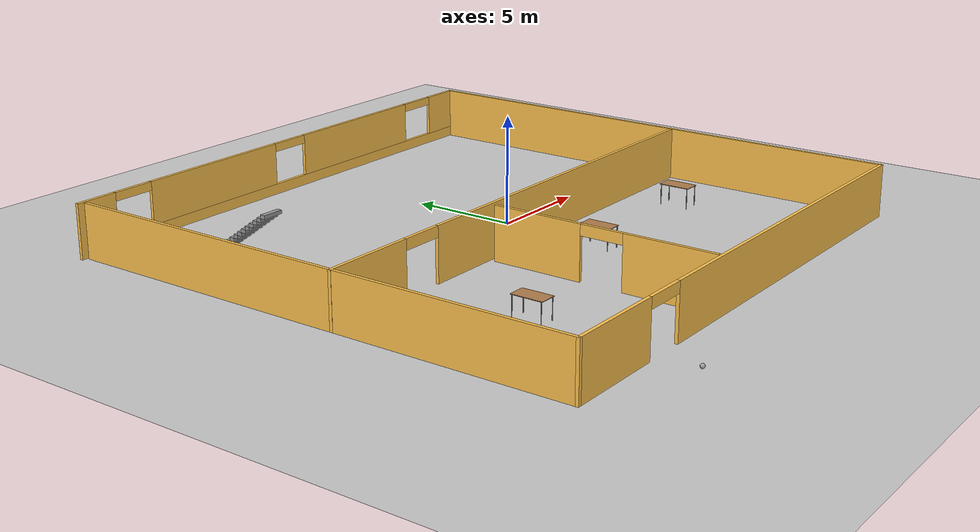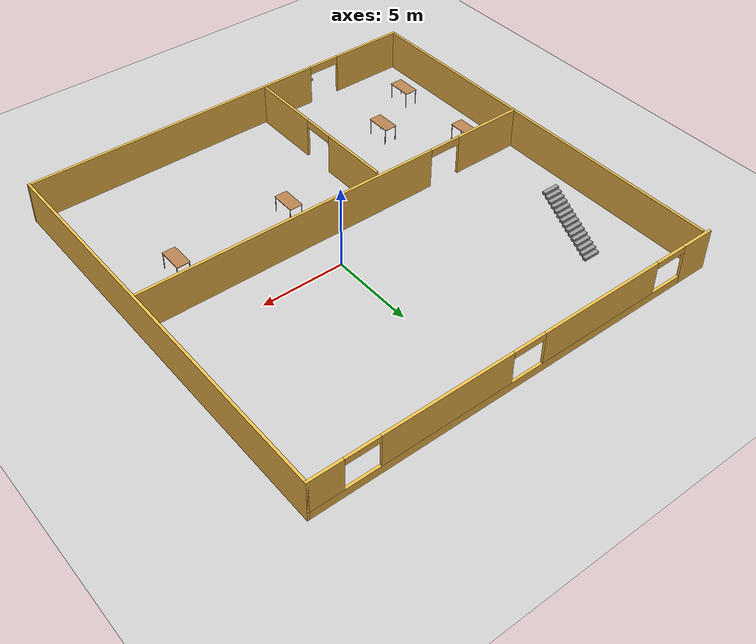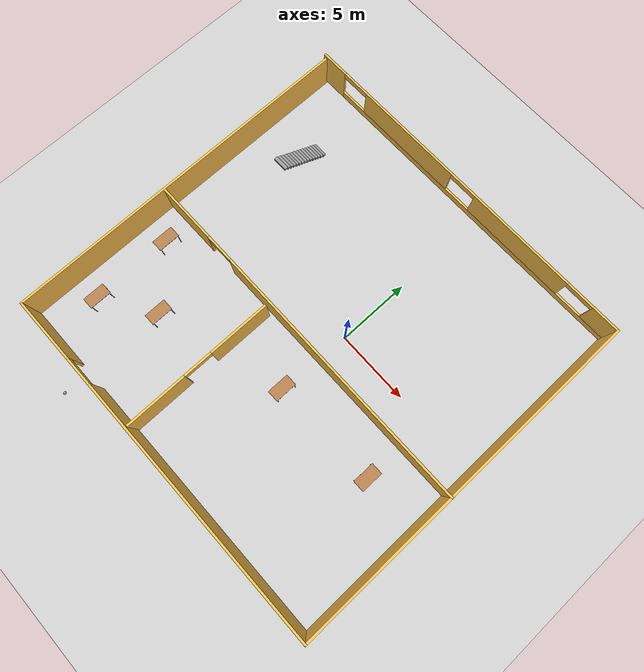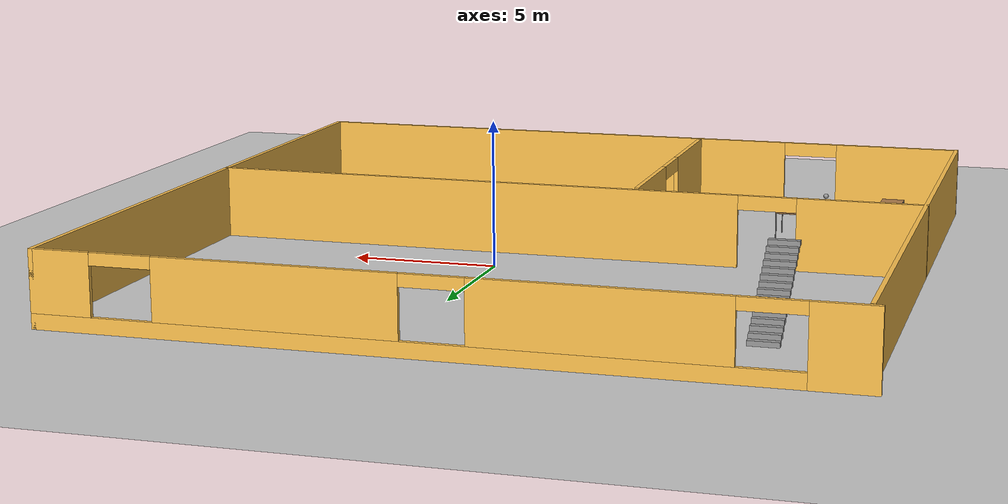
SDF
<sdf version="1.6">
 <world name="default">
  <model name="ground_plane">
   <static>1</static>
   <link name="link">
    <collision name="collision">
     <geometry><plane><normal>0 0 1</normal><size>100 100</size></plane></geometry>
     <surface>
      <contact><collide_bitmask>65535</collide_bitmask></contact>
      <friction><ode><mu>100</mu><mu2>50</mu2></ode></friction>
     </surface>
    </collision>
    <visual name="visual">
     <cast_shadows>0</cast_shadows>
     <geometry><plane><normal>0 0 1</normal><size>100 100</size></plane></geometry>
     <material>
      <script><uri>file://media/materials/scripts/gazebo.material</uri><name>Gazebo/Grey</name></script>
     </material>
    </visual>
   </link>
  </model>
  <model name="building_0">
   <pose>-1.83631 -0.712175 0 0 -0 0</pose>
   <link name="Stairs_0">
    <visual name="Stairs_0_Visual_0">
     <pose>-8.80586 8.30072 0.083333 0 -0 0</pose>
     <geometry><box><size>1 0.233333 0.166667</size></box></geometry>
     <material>
      <script><uri>file://media/materials/scripts/gazebo.material</uri><name>Gazebo/Grey</name></script>
      <ambient>1 1 1 1</ambient>
     </material>
     <meta><layer>0</layer></meta>
    </visual>
    <collision name="Stairs_0_Collision_0">
     <geometry><box><size>1 0.233333 0.166667</size></box></geometry>
     <pose>-8.80586 8.30072 0.083333 0 -0 0</pose>
    </collision>
    <visual name="Stairs_0_Visual_1">
     <pose>-8.80586 8.06739 0.25 0 -0 0</pose>
     <geometry><box><size>1 0.233333 0.166667</size></box></geometry>
     <material>
      <script><uri>file://media/materials/scripts/gazebo.material</uri><name>Gazebo/Grey</name></script>
      <ambient>1 1 1 1</ambient>
     </material>
     <meta><layer>0</layer></meta>
    </visual>
    <collision name="Stairs_0_Collision_1">
     <geometry><box><size>1 0.233333 0.166667</size></box></geometry>
     <pose>-8.80586 8.06739 0.25 0 -0 0</pose>
    </collision>
    <visual name="Stairs_0_Visual_2">
     <pose>-8.80586 7.83406 0.416667 0 -0 0</pose>
     <geometry><box><size>1 0.233333 0.166667</size></box></geometry>
     <material>
      <script><uri>file://media/materials/scripts/gazebo.material</uri><name>Gazebo/Grey</name></script>
      <ambient>1 1 1 1</ambient>
     </material>
     <meta><layer>0</layer></meta>
    </visual>
    <collision name="Stairs_0_Collision_2">
     <geometry><box><size>1 0.233333 0.166667</size></box></geometry>
     <pose>-8.80586 7.83406 0.416667 0 -0 0</pose>
    </collision>
    <visual name="Stairs_0_Visual_3">
     <pose>-8.80586 7.60072 0.583333 0 -0 0</pose>
     <geometry><box><size>1 0.233333 0.166667</size></box></geometry>
     <material>
      <script><uri>file://media/materials/scripts/gazebo.material</uri><name>Gazebo/Grey</name></script>
      <ambient>1 1 1 1</ambient>
     </material>
     <meta><layer>0</layer></meta>
    </visual>
    <collision name="Stairs_0_Collision_3">
     <geometry><box><size>1 0.233333 0.166667</size></box></geometry>
     <pose>-8.80586 7.60072 0.583333 0 -0 0</pose>
    </collision>
    <visual name="Stairs_0_Visual_4">
     <pose>-8.80586 7.36739 0.75 0 -0 0</pose>
     <geometry><box><size>1 0.233333 0.166667</size></box></geometry>
     <material>
      <script><uri>file://media/materials/scripts/gazebo.material</uri><name>Gazebo/Grey</name></script>
      <ambient>1 1 1 1</ambient>
     </material>
     <meta><layer>0</layer></meta>
    </visual>
    <collision name="Stairs_0_Collision_4">
     <geometry><box><size>1 0.233333 0.166667</size></box></geometry>
     <pose>-8.80586 7.36739 0.75 0 -0 0</pose>
    </collision>
    <visual name="Stairs_0_Visual_5">
     <pose>-8.80586 7.13406 0.916667 0 -0 0</pose>
     <geometry><box><size>1 0.233333 0.166667</size></box></geometry>
     <material>
      <script><uri>file://media/materials/scripts/gazebo.material</uri><name>Gazebo/Grey</name></script>
      <ambient>1 1 1 1</ambient>
     </material>
     <meta><layer>0</layer></meta>
    </visual>
    <collision name="Stairs_0_Collision_5">
     <geometry><box><size>1 0.233333 0.166667</size></box></geometry>
     <pose>-8.80586 7.13406 0.916667 0 -0 0</pose>
    </collision>
    <visual name="Stairs_0_Visual_6">
     <pose>-8.80586 6.90072 1.08333 0 -0 0</pose>
     <geometry><box><size>1 0.233333 0.166667</size></box></geometry>
     <material>
      <script><uri>file://media/materials/scripts/gazebo.material</uri><name>Gazebo/Grey</name></script>
      <ambient>1 1 1 1</ambient>
     </material>
     <meta><layer>0</layer></meta>
    </visual>
    <collision name="Stairs_0_Collision_6">
     <geometry><box><size>1 0.233333 0.166667</size></box></geometry>
     <pose>-8.80586 6.90072 1.08333 0 -0 0</pose>
    </collision>
    <visual name="Stairs_0_Visual_7">
     <pose>-8.80586 6.66739 1.25 0 -0 0</pose>
     <geometry><box><size>1 0.233333 0.166667</size></box></geometry>
     <material>
      <script><uri>file://media/materials/scripts/gazebo.material</uri><name>Gazebo/Grey</name></script>
      <ambient>1 1 1 1</ambient>
     </material>
     <meta><layer>0</layer></meta>
    </visual>
    <collision name="Stairs_0_Collision_7">
     <geometry><box><size>1 0.233333 0.166667</size></box></geometry>
     <pose>-8.80586 6.66739 1.25 0 -0 0</pose>
    </collision>
    <visual name="Stairs_0_Visual_8">
     <pose>-8.80586 6.43406 1.41667 0 -0 0</pose>
     <geometry><box><size>1 0.233333 0.166667</size></box></geometry>
     <material>
      <script><uri>file://media/materials/scripts/gazebo.material</uri><name>Gazebo/Grey</name></script>
      <ambient>1 1 1 1</ambient>
     </material>
     <meta><layer>0</layer></meta>
    </visual>
    <collision name="Stairs_0_Collision_8">
     <geometry><box><size>1 0.233333 0.166667</size></box></geometry>
     <pose>-8.80586 6.43406 1.41667 0 -0 0</pose>
    </collision>
    <visual name="Stairs_0_Visual_9">
     <pose>-8.80586 6.20072 1.58333 0 -0 0</pose>
     <geometry><box><size>1 0.233333 0.166667</size></box></geometry>
     <material>
      <script><uri>file://media/materials/scripts/gazebo.material</uri><name>Gazebo/Grey</name></script>
      <ambient>1 1 1 1</ambient>
     </material>
     <meta><layer>0</layer></meta>
    </visual>
    <collision name="Stairs_0_Collision_9">
     <geometry><box><size>1 0.233333 0.166667</size></box></geometry>
     <pose>-8.80586 6.20072 1.58333 0 -0 0</pose>
    </collision>
    <visual name="Stairs_0_Visual_10">
     <pose>-8.80586 5.96739 1.75 0 -0 0</pose>
     <geometry><box><size>1 0.233333 0.166667</size></box></geometry>
     <material>
      <script><uri>file://media/materials/scripts/gazebo.material</uri><name>Gazebo/Grey</name></script>
      <ambient>1 1 1 1</ambient>
     </material>
     <meta><layer>0</layer></meta>
    </visual>
    <collision name="Stairs_0_Collision_10">
     <geometry><box><size>1 0.233333 0.166667</size></box></geometry>
     <pose>-8.80586 5.96739 1.75 0 -0 0</pose>
    </collision>
    <visual name="Stairs_0_Visual_11">
     <pose>-8.80586 5.73406 1.91667 0 -0 0</pose>
     <geometry><box><size>1 0.233333 0.166667</size></box></geometry>
     <material>
      <script><uri>file://media/materials/scripts/gazebo.material</uri><name>Gazebo/Grey</name></script>
      <ambient>1 1 1 1</ambient>
     </material>
     <meta><layer>0</layer></meta>
    </visual>
    <collision name="Stairs_0_Collision_11">
     <geometry><box><size>1 0.233333 0.166667</size></box></geometry>
     <pose>-8.80586 5.73406 1.91667 0 -0 0</pose>
    </collision>
    <visual name="Stairs_0_Visual_12">
     <pose>-8.80586 5.50072 2.08333 0 -0 0</pose>
     <geometry><box><size>1 0.233333 0.166667</size></box></geometry>
     <material>
      <script><uri>file://media/materials/scripts/gazebo.material</uri><name>Gazebo/Grey</name></script>
      <ambient>1 1 1 1</ambient>
     </material>
     <meta><layer>0</layer></meta>
    </visual>
    <collision name="Stairs_0_Collision_12">
     <geometry><box><size>1 0.233333 0.166667</size></box></geometry>
     <pose>-8.80586 5.50072 2.08333 0 -0 0</pose>
    </collision>
    <visual name="Stairs_0_Visual_13">
     <pose>-8.80586 5.26739 2.25 0 -0 0</pose>
     <geometry><box><size>1 0.233333 0.166667</size></box></geometry>
     <material>
      <script><uri>file://media/materials/scripts/gazebo.material</uri><name>Gazebo/Grey</name></script>
      <ambient>1 1 1 1</ambient>
     </material>
     <meta><layer>0</layer></meta>
    </visual>
    <collision name="Stairs_0_Collision_13">
     <geometry><box><size>1 0.233333 0.166667</size></box></geometry>
     <pose>-8.80586 5.26739 2.25 0 -0 0</pose>
    </collision>
    <visual name="Stairs_0_Visual_14">
     <pose>-8.80586 5.03406 2.41667 0 -0 0</pose>
     <geometry><box><size>1 0.233333 0.166667</size></box></geometry>
     <material>
      <script><uri>file://media/materials/scripts/gazebo.material</uri><name>Gazebo/Grey</name></script>
      <ambient>1 1 1 1</ambient>
     </material>
     <meta><layer>0</layer></meta>
    </visual>
    <collision name="Stairs_0_Collision_14">
     <geometry><box><size>1 0.233333 0.166667</size></box></geometry>
     <pose>-8.80586 5.03406 2.41667 0 -0 0</pose>
    </collision>
   </link>
   <link name="Wall_0">
    <pose>-1e-06 12.425 0 0 -0 0</pose>
    <visual name="Wall_0_Visual_0">
     <pose>-11.7466 0 1.25 0 -0 0</pose>
     <geometry><box><size>2.0068 0.15 2.5</size></box></geometry>
     <material>
      <script><uri>file://media/materials/scripts/gazebo.material</uri><name>Gazebo/Grey</name></script>
      <ambient>1 0.764706 0.305882 1</ambient>
     </material>
     <meta><layer>0</layer></meta>
    </visual>
    <collision name="Wall_0_Collision_0">
     <geometry><box><size>2.0068 0.15 2.5</size></box></geometry>
     <pose>-11.7466 0 1.25 0 -0 0</pose>
    </collision>
    <visual name="Wall_0_Visual_1">
     <pose>1.0034 0 0.25 0 -0 0</pose>
     <geometry><box><size>23.4932 0.15 0.5</size></box></geometry>
     <material>
      <script><uri>file://media/materials/scripts/gazebo.material</uri><name>Gazebo/Grey</name></script>
      <ambient>1 0.764706 0.305882 1</ambient>
     </material>
     <meta><layer>0</layer></meta>
    </visual>
    <collision name="Wall_0_Collision_1">
     <geometry><box><size>23.4932 0.15 0.5</size></box></geometry>
     <pose>1.0034 0 0.25 0 -0 0</pose>
    </collision>
    <visual name="Wall_0_Visual_2">
     <pose>-4.86655 0 1.5 0 -0 0</pose>
     <geometry><box><size>7.75331 0.15 2</size></box></geometry>
     <material>
      <script><uri>file://media/materials/scripts/gazebo.material</uri><name>Gazebo/Grey</name></script>
      <ambient>1 0.764706 0.305882 1</ambient>
     </material>
     <meta><layer>0</layer></meta>
    </visual>
    <collision name="Wall_0_Collision_2">
     <geometry><box><size>7.75331 0.15 2</size></box></geometry>
     <pose>-4.86655 0 1.5 0 -0 0</pose>
    </collision>
    <visual name="Wall_0_Visual_3">
     <pose>4.87812 0 1.5 0 -0 0</pose>
     <geometry><box><size>7.73602 0.15 2</size></box></geometry>
     <material>
      <script><uri>file://media/materials/scripts/gazebo.material</uri><name>Gazebo/Grey</name></script>
      <ambient>1 0.764706 0.305882 1</ambient>
     </material>
     <meta><layer>0</layer></meta>
    </visual>
    <collision name="Wall_0_Collision_3">
     <geometry><box><size>7.73602 0.15 2</size></box></geometry>
     <pose>4.87812 0 1.5 0 -0 0</pose>
    </collision>
    <visual name="Wall_0_Visual_4">
     <pose>11.7481 0 1.5 0 -0 0</pose>
     <geometry><box><size>2.00387 0.15 2</size></box></geometry>
     <material>
      <script><uri>file://media/materials/scripts/gazebo.material</uri><name>Gazebo/Grey</name></script>
      <ambient>1 0.764706 0.305882 1</ambient>
     </material>
     <meta><layer>0</layer></meta>
    </visual>
    <collision name="Wall_0_Collision_4">
     <geometry><box><size>2.00387 0.15 2</size></box></geometry>
     <pose>11.7481 0 1.5 0 -0 0</pose>
    </collision>
    <visual name="Wall_0_Visual_5">
     <pose>-9.7432 0 2.3 0 -0 0</pose>
     <geometry><box><size>2 0.15 0.4</size></box></geometry>
     <material>
      <script><uri>file://media/materials/scripts/gazebo.material</uri><name>Gazebo/Grey</name></script>
      <ambient>1 0.764706 0.305882 1</ambient>
     </material>
     <meta><layer>0</layer></meta>
    </visual>
    <collision name="Wall_0_Collision_5">
     <geometry><box><size>2 0.15 0.4</size></box></geometry>
     <pose>-9.7432 0 2.3 0 -0 0</pose>
    </collision>
    <visual name="Wall_0_Visual_6">
     <pose>0.01011 0 2.3 0 -0 0</pose>
     <geometry><box><size>2 0.15 0.4</size></box></geometry>
     <material>
      <script><uri>file://media/materials/scripts/gazebo.material</uri><name>Gazebo/Grey</name></script>
      <ambient>1 0.764706 0.305882 1</ambient>
     </material>
     <meta><layer>0</layer></meta>
    </visual>
    <collision name="Wall_0_Collision_6">
     <geometry><box><size>2 0.15 0.4</size></box></geometry>
     <pose>0.01011 0 2.3 0 -0 0</pose>
    </collision>
    <visual name="Wall_0_Visual_7">
     <pose>9.74613 0 2.3 0 -0 0</pose>
     <geometry><box><size>2 0.15 0.4</size></box></geometry>
     <material>
      <script><uri>file://media/materials/scripts/gazebo.material</uri><name>Gazebo/Grey</name></script>
      <ambient>1 0.764706 0.305882 1</ambient>
     </material>
     <meta><layer>0</layer></meta>
    </visual>
    <collision name="Wall_0_Collision_7">
     <geometry><box><size>2 0.15 0.4</size></box></geometry>
     <pose>9.74613 0 2.3 0 -0 0</pose>
    </collision>
   </link>
   <link name="Wall_1">
    <collision name="Wall_1_Collision">
     <geometry><box><size>25 0.15 2.5</size></box></geometry>
     <pose>0 0 1.25 0 -0 0</pose>
    </collision>
    <visual name="Wall_1_Visual">
     <pose>0 0 1.25 0 -0 0</pose>
     <geometry><box><size>25 0.15 2.5</size></box></geometry>
     <material>
      <script><uri>file://media/materials/scripts/gazebo.material</uri><name>Gazebo/Grey</name></script>
      <ambient>1 0.764706 0.305882 1</ambient>
     </material>
     <meta><layer>0</layer></meta>
    </visual>
    <pose>12.675 0 0 0 0 -1.5708</pose>
   </link>
   <link name="Wall_2">
    <pose>0.124999 -12.425 0 0 -0 3.14159</pose>
    <visual name="Wall_2_Visual_0">
     <pose>-3.3109 0 1.25 0 -0 0</pose>
     <geometry><box><size>18.6282 0.15 2.5</size></box></geometry>
     <material>
      <script><uri>file://media/materials/scripts/gazebo.material</uri><name>Gazebo/Grey</name></script>
      <ambient>1 0.764706 0.305882 1</ambient>
     </material>
     <meta><layer>0</layer></meta>
    </visual>
    <collision name="Wall_2_Collision_0">
     <geometry><box><size>18.6282 0.15 2.5</size></box></geometry>
     <pose>-3.3109 0 1.25 0 -0 0</pose>
    </collision>
    <visual name="Wall_2_Visual_1">
     <pose>10.3141 0 1.25 0 -0 0</pose>
     <geometry><box><size>4.62181 0.15 2.5</size></box></geometry>
     <material>
      <script><uri>file://media/materials/scripts/gazebo.material</uri><name>Gazebo/Grey</name></script>
      <ambient>1 0.764706 0.305882 1</ambient>
     </material>
     <meta><layer>0</layer></meta>
    </visual>
    <collision name="Wall_2_Collision_1">
     <geometry><box><size>4.62181 0.15 2.5</size></box></geometry>
     <pose>10.3141 0 1.25 0 -0 0</pose>
    </collision>
    <visual name="Wall_2_Visual_2">
     <pose>7.00319 0 2.25 0 -0 0</pose>
     <geometry><box><size>2 0.15 0.5</size></box></geometry>
     <material>
      <script><uri>file://media/materials/scripts/gazebo.material</uri><name>Gazebo/Grey</name></script>
      <ambient>1 0.764706 0.305882 1</ambient>
     </material>
     <meta><layer>0</layer></meta>
    </visual>
    <collision name="Wall_2_Collision_2">
     <geometry><box><size>2 0.15 0.5</size></box></geometry>
     <pose>7.00319 0 2.25 0 -0 0</pose>
    </collision>
   </link>
   <link name="Wall_3">
    <collision name="Wall_3_Collision">
     <geometry><box><size>24.75 0.15 2.5</size></box></geometry>
     <pose>0 0 1.25 0 -0 0</pose>
    </collision>
    <visual name="Wall_3_Visual">
     <pose>0 0 1.25 0 -0 0</pose>
     <geometry><box><size>24.75 0.15 2.5</size></box></geometry>
     <material>
      <script><uri>file://media/materials/scripts/gazebo.material</uri><name>Gazebo/Grey</name></script>
      <ambient>1 0.764706 0.305882 1</ambient>
     </material>
     <meta><layer>0</layer></meta>
    </visual>
    <pose>-12.425 -0.125 0 0 -0 1.5708</pose>
   </link>
   <link name="Wall_5">
    <pose>0.118339 -1.50622 0 0 -0 0</pose>
    <visual name="Wall_5_Visual_0">
     <pose>-10.4316 0 1.25 0 -0 0</pose>
     <geometry><box><size>4.38678 0.15 2.5</size></box></geometry>
     <material>
      <script><uri>file://media/materials/scripts/gazebo.material</uri><name>Gazebo/Grey</name></script>
      <ambient>1 0.764706 0.305882 1</ambient>
     </material>
     <meta><layer>0</layer></meta>
    </visual>
    <collision name="Wall_5_Collision_0">
     <geometry><box><size>4.38678 0.15 2.5</size></box></geometry>
     <pose>-10.4316 0 1.25 0 -0 0</pose>
    </collision>
    <visual name="Wall_5_Visual_1">
     <pose>3.19339 0 1.25 0 -0 0</pose>
     <geometry><box><size>18.8632 0.15 2.5</size></box></geometry>
     <material>
      <script><uri>file://media/materials/scripts/gazebo.material</uri><name>Gazebo/Grey</name></script>
      <ambient>1 0.764706 0.305882 1</ambient>
     </material>
     <meta><layer>0</layer></meta>
    </visual>
    <collision name="Wall_5_Collision_1">
     <geometry><box><size>18.8632 0.15 2.5</size></box></geometry>
     <pose>3.19339 0 1.25 0 -0 0</pose>
    </collision>
    <visual name="Wall_5_Visual_2">
     <pose>-7.23822 0 2.25 0 -0 0</pose>
     <geometry><box><size>2 0.15 0.5</size></box></geometry>
     <material>
      <script><uri>file://media/materials/scripts/gazebo.material</uri><name>Gazebo/Grey</name></script>
      <ambient>1 0.764706 0.305882 1</ambient>
     </material>
     <meta><layer>0</layer></meta>
    </visual>
    <collision name="Wall_5_Collision_2">
     <geometry><box><size>2 0.15 0.5</size></box></geometry>
     <pose>-7.23822 0 2.25 0 -0 0</pose>
    </collision>
   </link>
   <link name="Wall_7">
    <pose>-2.51556 -7.04622 0 0 0 -1.5708</pose>
    <visual name="Wall_7_Visual_0">
     <pose>-3.12066 0 1.25 0 -0 0</pose>
     <geometry><box><size>4.25868 0.15 2.5</size></box></geometry>
     <material>
      <script><uri>file://media/materials/scripts/gazebo.material</uri><name>Gazebo/Grey</name></script>
      <ambient>1 0.764706 0.305882 1</ambient>
     </material>
     <meta><layer>0</layer></meta>
    </visual>
    <collision name="Wall_7_Collision_0">
     <geometry><box><size>4.25868 0.15 2.5</size></box></geometry>
     <pose>-3.12066 0 1.25 0 -0 0</pose>
    </collision>
    <visual name="Wall_7_Visual_1">
     <pose>3.12934 0 1.25 0 -0 0</pose>
     <geometry><box><size>4.24132 0.15 2.5</size></box></geometry>
     <material>
      <script><uri>file://media/materials/scripts/gazebo.material</uri><name>Gazebo/Grey</name></script>
      <ambient>1 0.764706 0.305882 1</ambient>
     </material>
     <meta><layer>0</layer></meta>
    </visual>
    <collision name="Wall_7_Collision_1">
     <geometry><box><size>4.24132 0.15 2.5</size></box></geometry>
     <pose>3.12934 0 1.25 0 -0 0</pose>
    </collision>
    <visual name="Wall_7_Visual_2">
     <pose>0.008684 0 2.25 0 -0 0</pose>
     <geometry><box><size>2 0.15 0.5</size></box></geometry>
     <material>
      <script><uri>file://media/materials/scripts/gazebo.material</uri><name>Gazebo/Grey</name></script>
      <ambient>1 0.764706 0.305882 1</ambient>
     </material>
     <meta><layer>0</layer></meta>
    </visual>
    <collision name="Wall_7_Collision_2">
     <geometry><box><size>2 0.15 0.5</size></box></geometry>
     <pose>0.008684 0 2.25 0 -0 0</pose>
    </collision>
   </link>
   <static>1</static>
  </model>
  <model name="my_ball">
   <link name="link_0">
    <inertial>
     <mass>1</mass>
     <inertia><ixx>0.1</ixx><ixy>0</ixy><ixz>0</ixz><iyy>0.1</iyy><iyz>0</iyz><izz>0.1</izz></inertia>
    </inertial>
    <visual name="visual">
     <geometry><sphere><radius>0.1</radius></sphere></geometry>
     <material>
      <lighting>1</lighting>
      <script><uri>file://media/materials/scripts/gazebo.material</uri><name>Gazebo/Grey</name></script>
      <shader type="pixel"><normal_map>__default__</normal_map></shader>
      <ambient>1 1 1 1</ambient>
      <diffuse>1 1 1 1</diffuse>
      <specular>1 1 1 1</specular>
      <emissive>1 1 1 1</emissive>
     </material>
    </visual>
    <collision name="collision">
     <geometry><sphere><radius>0.1</radius></sphere></geometry>
     <surface>
      <friction>
       <ode><mu>1</mu><mu2>1</mu2><fdir1>0 0 0</fdir1><slip1>0</slip1><slip2>0</slip2></ode>
       <torsional>
        <coefficient>1</coefficient>
        <patch_radius>0</patch_radius>
        <surface_radius>0</surface_radius>
        <use_patch_radius>1</use_patch_radius>
        <ode><slip>0</slip></ode>
       </torsional>
      </friction>
      <bounce><restitution_coefficient>0</restitution_coefficient><threshold>1e+06</threshold></bounce>
      <contact>
       <collide_without_contact>0</collide_without_contact>
       <collide_without_contact_bitmask>1</collide_without_contact_bitmask>
       <collide_bitmask>1</collide_bitmask>
       <ode>
        <soft_cfm>0</soft_cfm>
        <soft_erp>0.2</soft_erp>
        <kp>1e+13</kp>
        <kd>1</kd>
        <max_vel>0.01</max_vel>
        <min_depth>0</min_depth>
       </ode>
       <bullet>
        <split_impulse>1</split_impulse>
        <split_impulse_penetration_threshold>-0.01</split_impulse_penetration_threshold>
        <soft_cfm>0</soft_cfm>
        <soft_erp>0.2</soft_erp>
        <kp>1e+13</kp>
        <kd>1</kd>
       </bullet>
      </contact>
     </surface>
    </collision>
   </link>
   <static>0</static>
   <pose>-9.09504 -14.986 0.1 0 -0 0</pose>
  </model>
  <model name="table_clone">
   <static>1</static>
   <link name="link">
    <collision name="surface">
     <pose>0 0 1 0 -0 0</pose>
     <geometry><box><size>1.5 0.8 0.03</size></box></geometry>
     <surface><friction><ode><mu>0.6</mu><mu2>0.6</mu2></ode></friction></surface>
    </collision>
    <visual name="visual1">
     <pose>0 0 1 0 -0 0</pose>
     <geometry><box><size>1.5 0.8 0.03</size></box></geometry>
     <material>
      <script><uri>file://media/materials/scripts/gazebo.material</uri><name>Gazebo/Wood</name></script>
     </material>
    </visual>
    <collision name="front_left_leg">
     <pose>0.68 0.38 0.5 0 -0 0</pose>
     <geometry><cylinder><radius>0.02</radius><length>1</length></cylinder></geometry>
    </collision>
    <visual name="front_left_leg">
     <pose>0.68 0.38 0.5 0 -0 0</pose>
     <geometry><cylinder><radius>0.02</radius><length>1</length></cylinder></geometry>
     <material>
      <script><uri>file://media/materials/scripts/gazebo.material</uri><name>Gazebo/Grey</name></script>
     </material>
    </visual>
    <collision name="front_right_leg">
     <pose>0.68 -0.38 0.5 0 -0 0</pose>
     <geometry><cylinder><radius>0.02</radius><length>1</length></cylinder></geometry>
    </collision>
    <visual name="front_right_leg">
     <pose>0.68 -0.38 0.5 0 -0 0</pose>
     <geometry><cylinder><radius>0.02</radius><length>1</length></cylinder></geometry>
     <material>
      <script><uri>file://media/materials/scripts/gazebo.material</uri><name>Gazebo/Grey</name></script>
     </material>
    </visual>
    <collision name="back_right_leg">
     <pose>-0.68 -0.38 0.5 0 -0 0</pose>
     <geometry><cylinder><radius>0.02</radius><length>1</length></cylinder></geometry>
    </collision>
    <visual name="back_right_leg">
     <pose>-0.68 -0.38 0.5 0 -0 0</pose>
     <geometry><cylinder><radius>0.02</radius><length>1</length></cylinder></geometry>
     <material>
      <script><uri>file://media/materials/scripts/gazebo.material</uri><name>Gazebo/Grey</name></script>
     </material>
    </visual>
    <collision name="back_left_leg">
     <pose>-0.68 0.38 0.5 0 -0 0</pose>
     <geometry><cylinder><radius>0.02</radius><length>1</length></cylinder></geometry>
    </collision>
    <visual name="back_left_leg">
     <pose>-0.68 0.38 0.5 0 -0 0</pose>
     <geometry><cylinder><radius>0.02</radius><length>1</length></cylinder></geometry>
     <material>
      <script><uri>file://media/materials/scripts/gazebo.material</uri><name>Gazebo/Grey</name></script>
     </material>
    </visual>
   </link>
   <pose>7.01299 -4.82206 0 0 -0 1.5708</pose>
  </model>
  <model name="table_clone_0">
   <static>1</static>
   <link name="link">
    <collision name="surface">
     <pose>0 0 1 0 -0 0</pose>
     <geometry><box><size>1.5 0.8 0.03</size></box></geometry>
     <surface><friction><ode><mu>0.6</mu><mu2>0.6</mu2></ode></friction></surface>
    </collision>
    <visual name="visual1">
     <pose>0 0 1 0 -0 0</pose>
     <geometry><box><size>1.5 0.8 0.03</size></box></geometry>
     <material>
      <script><uri>file://media/materials/scripts/gazebo.material</uri><name>Gazebo/Wood</name></script>
     </material>
    </visual>
    <collision name="front_left_leg">
     <pose>0.68 0.38 0.5 0 -0 0</pose>
     <geometry><cylinder><radius>0.02</radius><length>1</length></cylinder></geometry>
    </collision>
    <visual name="front_left_leg">
     <pose>0.68 0.38 0.5 0 -0 0</pose>
     <geometry><cylinder><radius>0.02</radius><length>1</length></cylinder></geometry>
     <material>
      <script><uri>file://media/materials/scripts/gazebo.material</uri><name>Gazebo/Grey</name></script>
     </material>
    </visual>
    <collision name="front_right_leg">
     <pose>0.68 -0.38 0.5 0 -0 0</pose>
     <geometry><cylinder><radius>0.02</radius><length>1</length></cylinder></geometry>
    </collision>
    <visual name="front_right_leg">
     <pose>0.68 -0.38 0.5 0 -0 0</pose>
     <geometry><cylinder><radius>0.02</radius><length>1</length></cylinder></geometry>
     <material>
      <script><uri>file://media/materials/scripts/gazebo.material</uri><name>Gazebo/Grey</name></script>
     </material>
    </visual>
    <collision name="back_right_leg">
     <pose>-0.68 -0.38 0.5 0 -0 0</pose>
     <geometry><cylinder><radius>0.02</radius><length>1</length></cylinder></geometry>
    </collision>
    <visual name="back_right_leg">
     <pose>-0.68 -0.38 0.5 0 -0 0</pose>
     <geometry><cylinder><radius>0.02</radius><length>1</length></cylinder></geometry>
     <material>
      <script><uri>file://media/materials/scripts/gazebo.material</uri><name>Gazebo/Grey</name></script>
     </material>
    </visual>
    <collision name="back_left_leg">
     <pose>-0.68 0.38 0.5 0 -0 0</pose>
     <geometry><cylinder><radius>0.02</radius><length>1</length></cylinder></geometry>
    </collision>
    <visual name="back_left_leg">
     <pose>-0.68 0.38 0.5 0 -0 0</pose>
     <geometry><cylinder><radius>0.02</radius><length>1</length></cylinder></geometry>
     <material>
      <script><uri>file://media/materials/scripts/gazebo.material</uri><name>Gazebo/Grey</name></script>
     </material>
    </visual>
   </link>
   <pose>-0.215401 -5.02402 0 0 -0 1.5708</pose>
  </model>
  <model name="table_clone_3">
   <static>1</static>
   <link name="link">
    <collision name="surface">
     <pose>0 0 1 0 -0 0</pose>
     <geometry><box><size>1.5 0.8 0.03</size></box></geometry>
     <surface><friction><ode><mu>0.6</mu><mu2>0.6</mu2></ode></friction></surface>
    </collision>
    <visual name="visual1">
     <pose>0 0 1 0 -0 0</pose>
     <geometry><box><size>1.5 0.8 0.03</size></box></geometry>
     <material>
      <script><uri>file://media/materials/scripts/gazebo.material</uri><name>Gazebo/Wood</name></script>
     </material>
    </visual>
    <collision name="front_left_leg">
     <pose>0.68 0.38 0.5 0 -0 0</pose>
     <geometry><cylinder><radius>0.02</radius><length>1</length></cylinder></geometry>
    </collision>
    <visual name="front_left_leg">
     <pose>0.68 0.38 0.5 0 -0 0</pose>
     <geometry><cylinder><radius>0.02</radius><length>1</length></cylinder></geometry>
     <material>
      <script><uri>file://media/materials/scripts/gazebo.material</uri><name>Gazebo/Grey</name></script>
     </material>
    </visual>
    <collision name="front_right_leg">
     <pose>0.68 -0.38 0.5 0 -0 0</pose>
     <geometry><cylinder><radius>0.02</radius><length>1</length></cylinder></geometry>
    </collision>
    <visual name="front_right_leg">
     <pose>0.68 -0.38 0.5 0 -0 0</pose>
     <geometry><cylinder><radius>0.02</radius><length>1</length></cylinder></geometry>
     <material>
      <script><uri>file://media/materials/scripts/gazebo.material</uri><name>Gazebo/Grey</name></script>
     </material>
    </visual>
    <collision name="back_right_leg">
     <pose>-0.68 -0.38 0.5 0 -0 0</pose>
     <geometry><cylinder><radius>0.02</radius><length>1</length></cylinder></geometry>
    </collision>
    <visual name="back_right_leg">
     <pose>-0.68 -0.38 0.5 0 -0 0</pose>
     <geometry><cylinder><radius>0.02</radius><length>1</length></cylinder></geometry>
     <material>
      <script><uri>file://media/materials/scripts/gazebo.material</uri><name>Gazebo/Grey</name></script>
     </material>
    </visual>
    <collision name="back_left_leg">
     <pose>-0.68 0.38 0.5 0 -0 0</pose>
     <geometry><cylinder><radius>0.02</radius><length>1</length></cylinder></geometry>
    </collision>
    <visual name="back_left_leg">
     <pose>-0.68 0.38 0.5 0 -0 0</pose>
     <geometry><cylinder><radius>0.02</radius><length>1</length></cylinder></geometry>
     <material>
      <script><uri>file://media/materials/scripts/gazebo.material</uri><name>Gazebo/Grey</name></script>
     </material>
    </visual>
   </link>
   <pose>-12.308 -4.14266 0 0 -0 1.5708</pose>
  </model>
  <model name="table_clone_4">
   <static>1</static>
   <link name="link">
    <collision name="surface">
     <pose>0 0 1 0 -0 0</pose>
     <geometry><box><size>1.5 0.8 0.03</size></box></geometry>
     <surface><friction><ode><mu>0.6</mu><mu2>0.6</mu2></ode></friction></surface>
    </collision>
    <visual name="visual1">
     <pose>0 0 1 0 -0 0</pose>
     <geometry><box><size>1.5 0.8 0.03</size></box></geometry>
     <material>
      <script><uri>file://media/materials/scripts/gazebo.material</uri><name>Gazebo/Wood</name></script>
     </material>
    </visual>
    <collision name="front_left_leg">
     <pose>0.68 0.38 0.5 0 -0 0</pose>
     <geometry><cylinder><radius>0.02</radius><length>1</length></cylinder></geometry>
    </collision>
    <visual name="front_left_leg">
     <pose>0.68 0.38 0.5 0 -0 0</pose>
     <geometry><cylinder><radius>0.02</radius><length>1</length></cylinder></geometry>
     <material>
      <script><uri>file://media/materials/scripts/gazebo.material</uri><name>Gazebo/Grey</name></script>
     </material>
    </visual>
    <collision name="front_right_leg">
     <pose>0.68 -0.38 0.5 0 -0 0</pose>
     <geometry><cylinder><radius>0.02</radius><length>1</length></cylinder></geometry>
    </collision>
    <visual name="front_right_leg">
     <pose>0.68 -0.38 0.5 0 -0 0</pose>
     <geometry><cylinder><radius>0.02</radius><length>1</length></cylinder></geometry>
     <material>
      <script><uri>file://media/materials/scripts/gazebo.material</uri><name>Gazebo/Grey</name></script>
     </material>
    </visual>
    <collision name="back_right_leg">
     <pose>-0.68 -0.38 0.5 0 -0 0</pose>
     <geometry><cylinder><radius>0.02</radius><length>1</length></cylinder></geometry>
    </collision>
    <visual name="back_right_leg">
     <pose>-0.68 -0.38 0.5 0 -0 0</pose>
     <geometry><cylinder><radius>0.02</radius><length>1</length></cylinder></geometry>
     <material>
      <script><uri>file://media/materials/scripts/gazebo.material</uri><name>Gazebo/Grey</name></script>
     </material>
    </visual>
    <collision name="back_left_leg">
     <pose>-0.68 0.38 0.5 0 -0 0</pose>
     <geometry><cylinder><radius>0.02</radius><length>1</length></cylinder></geometry>
    </collision>
    <visual name="back_left_leg">
     <pose>-0.68 0.38 0.5 0 -0 0</pose>
     <geometry><cylinder><radius>0.02</radius><length>1</length></cylinder></geometry>
     <material>
      <script><uri>file://media/materials/scripts/gazebo.material</uri><name>Gazebo/Grey</name></script>
     </material>
    </visual>
   </link>
   <pose>-12.2588 -9.67712 0 0 -0 1.5708</pose>
  </model>
  <model name="table_clone_5">
   <static>1</static>
   <link name="link">
    <collision name="surface">
     <pose>0 0 1 0 -0 0</pose>
     <geometry><box><size>1.5 0.8 0.03</size></box></geometry>
     <surface><friction><ode><mu>0.6</mu><mu2>0.6</mu2></ode></friction></surface>
    </collision>
    <visual name="visual1">
     <pose>0 0 1 0 -0 0</pose>
     <geometry><box><size>1.5 0.8 0.03</size></box></geometry>
     <material>
      <script><uri>file://media/materials/scripts/gazebo.material</uri><name>Gazebo/Wood</name></script>
     </material>
    </visual>
    <collision name="front_left_leg">
     <pose>0.68 0.38 0.5 0 -0 0</pose>
     <geometry><cylinder><radius>0.02</radius><length>1</length></cylinder></geometry>
    </collision>
    <visual name="front_left_leg">
     <pose>0.68 0.38 0.5 0 -0 0</pose>
     <geometry><cylinder><radius>0.02</radius><length>1</length></cylinder></geometry>
     <material>
      <script><uri>file://media/materials/scripts/gazebo.material</uri><name>Gazebo/Grey</name></script>
     </material>
    </visual>
    <collision name="front_right_leg">
     <pose>0.68 -0.38 0.5 0 -0 0</pose>
     <geometry><cylinder><radius>0.02</radius><length>1</length></cylinder></geometry>
    </collision>
    <visual name="front_right_leg">
     <pose>0.68 -0.38 0.5 0 -0 0</pose>
     <geometry><cylinder><radius>0.02</radius><length>1</length></cylinder></geometry>
     <material>
      <script><uri>file://media/materials/scripts/gazebo.material</uri><name>Gazebo/Grey</name></script>
     </material>
    </visual>
    <collision name="back_right_leg">
     <pose>-0.68 -0.38 0.5 0 -0 0</pose>
     <geometry><cylinder><radius>0.02</radius><length>1</length></cylinder></geometry>
    </collision>
    <visual name="back_right_leg">
     <pose>-0.68 -0.38 0.5 0 -0 0</pose>
     <geometry><cylinder><radius>0.02</radius><length>1</length></cylinder></geometry>
     <material>
      <script><uri>file://media/materials/scripts/gazebo.material</uri><name>Gazebo/Grey</name></script>
     </material>
    </visual>
    <collision name="back_left_leg">
     <pose>-0.68 0.38 0.5 0 -0 0</pose>
     <geometry><cylinder><radius>0.02</radius><length>1</length></cylinder></geometry>
    </collision>
    <visual name="back_left_leg">
     <pose>-0.68 0.38 0.5 0 -0 0</pose>
     <geometry><cylinder><radius>0.02</radius><length>1</length></cylinder></geometry>
     <material>
      <script><uri>file://media/materials/scripts/gazebo.material</uri><name>Gazebo/Grey</name></script>
     </material>
    </visual>
   </link>
   <pose>-8.86336 -7.51767 0 0 -0 1.5708</pose>
  </model>
 </world>
</sdf>
